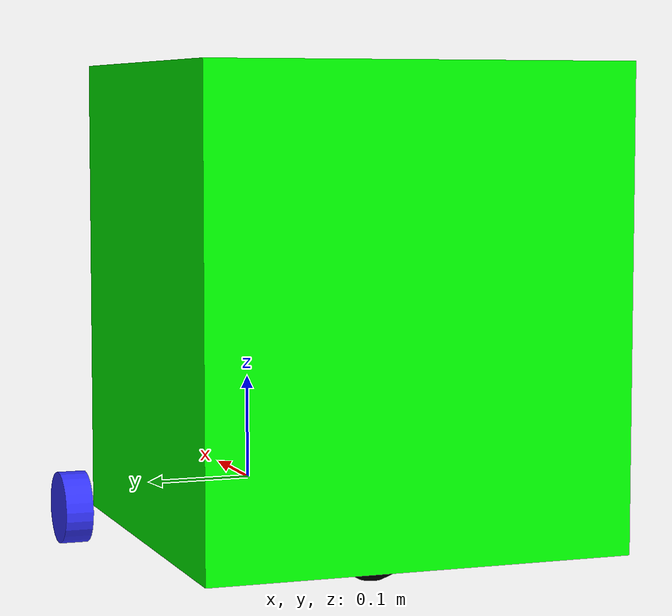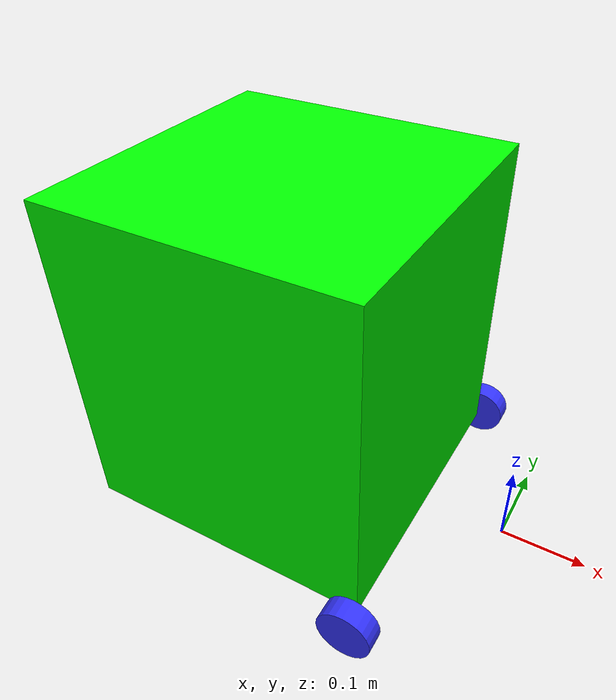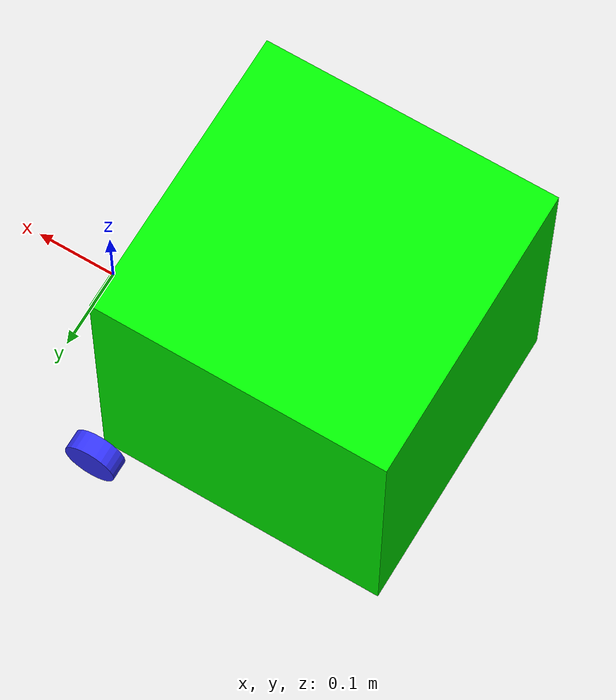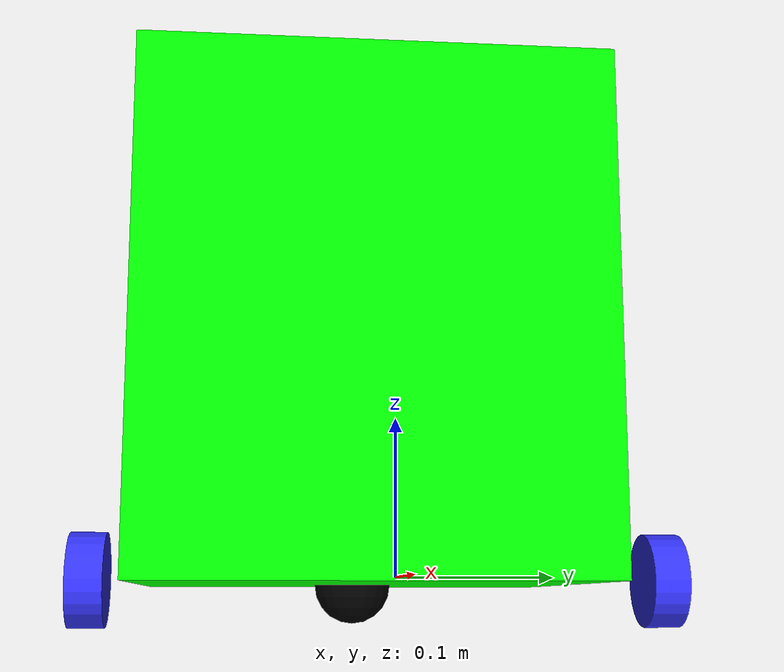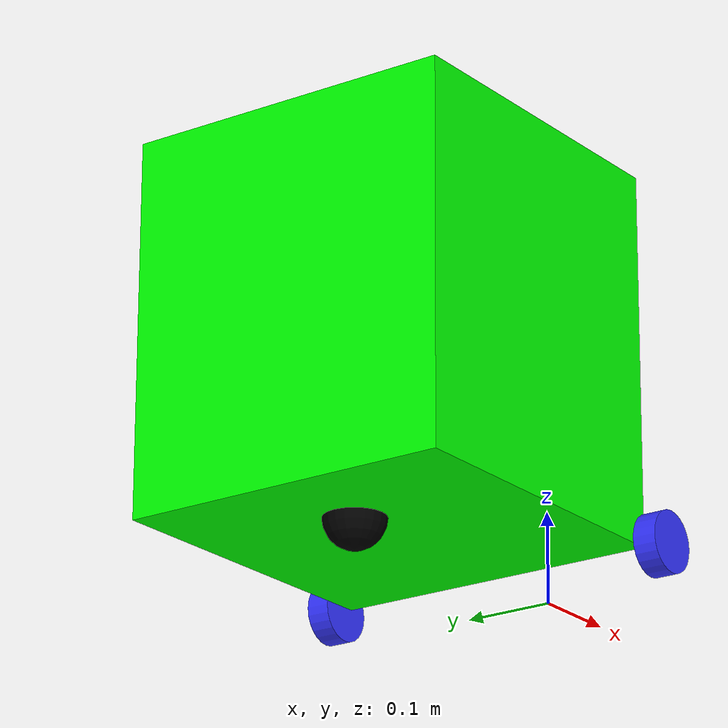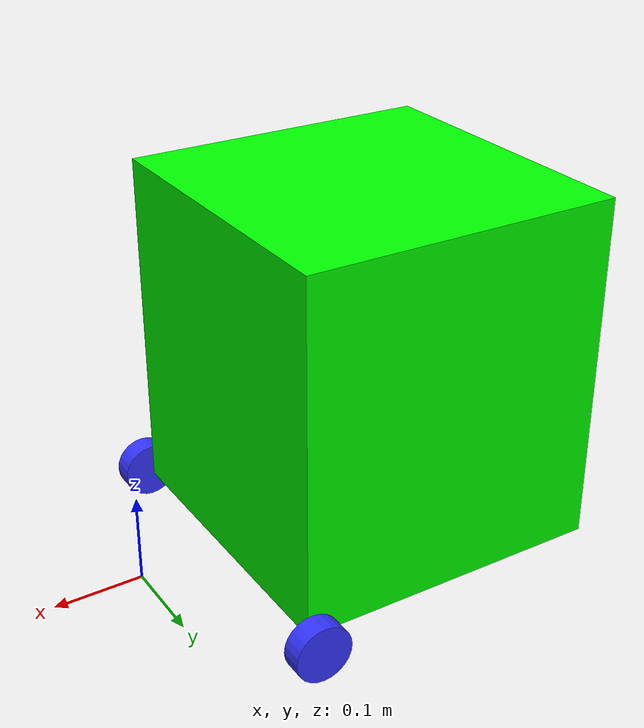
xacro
<?xml version="1.0"?>
<robot xmlns:xacro="http://www.ros.org/wiki/xacro"  name="robot">

    <xacro:include filename="robot_core.xacro" />
    <xacro:include filename="ros2_control.xacro"/>
    <xacro:include filename="gazebo_control.xacro" />
    <xacro:include filename="lidar.xacro"/>

</robot>

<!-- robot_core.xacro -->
<robot xmlns:xacro="http://www.ros.org/wiki/xacro" >

    <xacro:include filename="inertial_macros.xacro"/>

    <material name="white">
        <color rgba="1 1 1 1" />
    </material>

    <material name="orange">
        <color rgba="1 0.3 0.1 1"/>
    </material>

    <material name="blue">
        <color rgba="0.2 0.2 1 1"/>
    </material>

    <material name="black">
        <color rgba="0 0 0 1"/>
    </material>

    <material name="red">
        <color rgba="1 0 0 1"/>
    </material>

    <material name="green">
        <color rgba="0 1 0 1" />
    </material>

    <!-- BASE LINK -->

    <link name="base_link">

    </link>

    <!-- BASE_FOOTPRINT LINK -->

    <joint name="base_footprint_joint" type="fixed">
        <parent link="base_link"/>
        <child link="base_footprint"/>
        <origin xyz="0 0 0" rpy="0 0 0"/>

    </joint>
    <link name="base_footprint">

    </link>

    <!-- CHASSIS LINK -->

     <joint name="chassis_joint" type="fixed">
        <parent link="base_link"/>
        <child link="chassis"/>
        <origin xyz="-0.1 0 0" rpy="0 0 ${pi}"/>
    </joint>

    <link name="chassis">
        <visual>
            <origin xyz="0.18 0 0.2"/>
            <geometry>
                <box size="0.36 0.36 0.4"/>
            </geometry>
            <material name="green"/>
        </visual>
        <collision>
            <origin xyz="0.18 0 0.2"/>
            <geometry>
                <box size="0.36 0.36 0.4"/>
            </geometry>
        </collision>
        <xacro:inertial_box mass="6.5" x="0.36" y="0.36" z="0.4">
            <origin xyz="0.18 0 0.2" rpy="0 0 0"/>
        </xacro:inertial_box>
    </link>

    <gazebo reference="chassis">
        <material>Gazebo/White</material>
    </gazebo>

    <!-- LEFT WHEEL LINK -->

    <joint name="left_wheel_joint" type="continuous">
        <parent link="base_link"/>
        <child link="left_wheel"/>
        <origin xyz="-0.1 0.2 0" rpy="-${pi/2} 0 0" />
        <axis xyz="0 0 1"/>
    </joint>

    <link name="left_wheel">
        <visual>
            <geometry>
                <cylinder radius="0.0325" length="0.025"/>
            </geometry>
            <material name="blue"/>
        </visual>
        <collision>
            <geometry>
                <cylinder radius="0.0325" length="0.025"/>
            </geometry>
        </collision>
        <xacro:inertial_cylinder mass="0.1" length="0.025" radius="0.0325">
            <origin xyz="-0.1 0 0" rpy="0 0 0"/>
        </xacro:inertial_cylinder>
    </link>

    <gazebo reference="left_wheel">
        <material>Gazebo/Blue</material>
    </gazebo>

    <!-- RIGHT WHEEL LINK -->

    <joint name="right_wheel_joint" type="continuous">
        <parent link="base_link"/>
        <child link="right_wheel"/>
        <origin xyz="-0.1 -0.2 0" rpy="${pi/2} 0 0" />
        <axis xyz="0 0 1"/>
    </joint>

    <link name="right_wheel">
        <visual>
            <geometry>
                <cylinder radius="0.0325" length="0.025"/>
            </geometry>
            <material name="blue"/>
        </visual>
        <collision>
            <geometry>
                <cylinder radius="0.0325" length="0.025"/>
            </geometry>
        </collision>
        <xacro:inertial_cylinder mass="0.1" length="0.025" radius="0.0325">
            <origin xyz="-0.1 0 0" rpy="0 0 0"/>
        </xacro:inertial_cylinder>
    </link>

    <gazebo reference="right_wheel">
        <material>Gazebo/Blue</material>
    </gazebo>

    <!-- CASTER WHEEL LINK -->

    <joint name="caster_wheel_joint" type="fixed">
        <parent link="chassis"/>
        <child link="caster_wheel"/>
        <origin xyz="0.24 0 0"/>
    </joint>

    <link name="caster_wheel">
        <visual>
            <geometry>
                <sphere radius="0.0325"/>
            </geometry>
            <material name="black"/>
        </visual>
        <collision>
            <geometry>
                <sphere radius="0.0325"/>
            </geometry>
        </collision>
        <xacro:inertial_sphere mass="0.1" radius="0.0325">
            <origin xyz="0 0 0" rpy="0 0 0"/>
        </xacro:inertial_sphere>
    </link>

    <gazebo reference="caster_wheel">
        <material>Gazebo/Black</material>
        <mu1 value="0.001"/>
        <mu2 value="0.001"/>
    </gazebo>

</robot>

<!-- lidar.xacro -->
<robot xmlns:xacro="http://www.ros.org/wiki/xacro"  >

    <joint name="laser_joint" type="fixed">
        <parent link="chassis"/>
        <child link="laser_frame"/>
        <origin xyz="0.1 0 0.3" rpy="0 0 0"/>
    </joint>

    <link name="laser_frame">
        <visual>
            <origin xyz="0 0 0"/>
            <geometry>
                <cylinder length="0.08" radius="0.05"/>
            </geometry>
            <material name="red"/>
        </visual>
        <collision>
            <origin xyz="0 0 0"/>
            <geometry>
                <cylinder length="0.1" radius="0.05"/>
            </geometry>
        </collision>
        <xacro:inertial_cylinder mass="0.1" length="0.1" radius="0.05">
            <origin xyz="0 0 0" rpy="0 0 0"/>
        </xacro:inertial_cylinder>
    </link>

    <gazebo reference="laser_frame">
        <material>Gazebo/Red</material>

        <sensor name="laser" type="ray">
            <pose> 0 0 0 0 0 0 </pose>
            <visualize>true</visualize>
            <update_rate>10</update_rate>
            <ray>
                <scan>
                    <horizontal>
                        <samples>360</samples>
                        <min_angle>-3.14</min_angle>
                        <max_angle>3.14</max_angle>
                    </horizontal>
                </scan>
                <range>
                    <min>0.3</min>
                    <max>12</max>
                </range>
            </ray>
            <plugin name="laser_controller" filename="libgazebo_ros_ray_sensor.so">
                <ros>
                    <argument>~/out:=scan</argument>
                </ros>
                <output_type>sensor_msgs/LaserScan</output_type>
                <frame_name>laser_frame</frame_name>
            </plugin>
        </sensor>
    </gazebo>

</robot>
